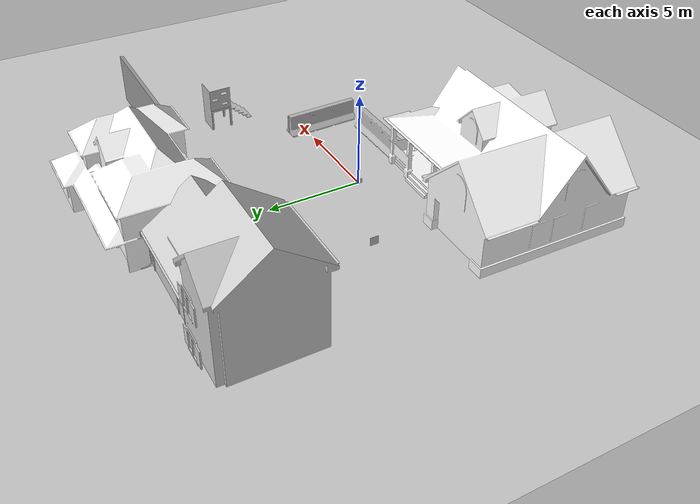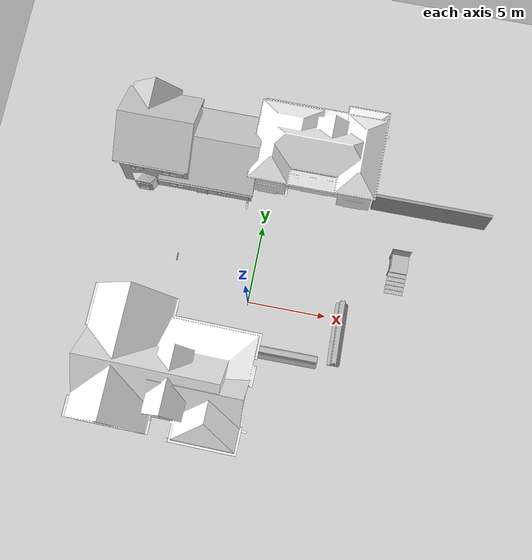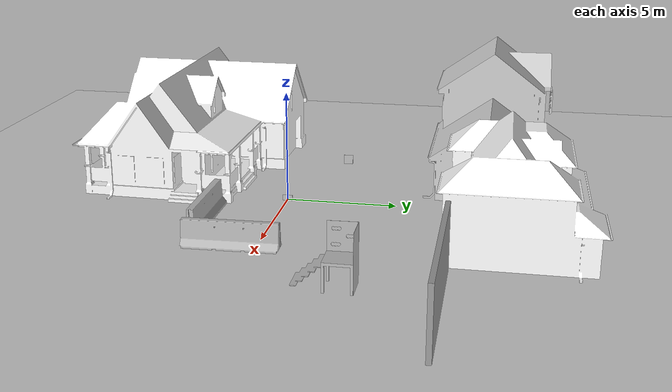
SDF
<sdf version="1.4">
 <world name="default">
  <light name="sun" type="directional">
   <pose>0 0 10 0 -0 0</pose>
   <diffuse>0.8 0.8 0.8 1</diffuse>
   <specular>0.2 0.2 0.2 1</specular>
   <attenuation>
    <range>1000</range>
    <constant>0.9</constant>
    <linear>0.01</linear>
    <quadratic>0.001</quadratic>
   </attenuation>
   <direction>-0.5 0.1 -0.9</direction>
  </light>
  <model name="ground_plane">
   <static>1</static>
   <link name="link">
    <collision name="collision">
     <geometry><plane><normal>0 0 1</normal><size>100 100</size></plane></geometry>
     <surface><friction><ode><mu>100</mu><mu2>50</mu2></ode></friction></surface>
    </collision>
    <visual name="visual">
     <cast_shadows>0</cast_shadows>
     <geometry><plane><normal>0 0 1</normal><size>100 100</size></plane></geometry>
     <material>
      <script><uri>file://media/materials/scripts/gazebo.material</uri><name>Gazebo/Grey</name></script>
     </material>
    </visual>
    <velocity_decay><linear>0</linear><angular>0</angular></velocity_decay>
   </link>
  </model>
  <physics type="ode">
   <max_step_size>0.001</max_step_size>
   <real_time_factor>1</real_time_factor>
   <real_time_update_rate>1000</real_time_update_rate>
   <gravity>0 0 -9.8</gravity>
  </physics>
  <scene><ambient>0.4 0.4 0.4 1</ambient><background>0.7 0.7 0.7 1</background><shadows>1</shadows></scene>
  <model name="House 3">
   <static>1</static>
   <link name="link">
    <collision name="collision">
     <geometry><mesh><uri>model://house_3/meshes/house_3.dae</uri></mesh></geometry>
    </collision>
    <visual name="visual">
     <geometry><mesh><uri>model://house_3/meshes/house_3.dae</uri></mesh></geometry>
     <material>
      <script>
       <uri>model://house_3/materials/scripts</uri>
       <uri>model://house_3/materials/textures</uri>
       <uri>model://house_1/materials/textures</uri>
       <name>House_3/Diffuse</name>
      </script>
      <shader type="normal_map_object_space">
       <normal_map>model://house_1/materials/textures/House_1_Normal.png</normal_map>
      </shader>
     </material>
    </visual>
    <velocity_decay><linear>0</linear><angular>0</angular></velocity_decay>
   </link>
   <pose>-5 9 0 0 -0 0</pose>
  </model>
  <model name="House 2">
   <static>1</static>
   <link name="link">
    <collision name="collision">
     <geometry><mesh><uri>model://house_2/meshes/house_2.dae</uri></mesh></geometry>
    </collision>
    <visual name="visual">
     <geometry><mesh><uri>model://house_2/meshes/house_2.dae</uri></mesh></geometry>
     <material>
      <script>
       <uri>model://house_2/materials/scripts</uri>
       <uri>model://house_2/materials/textures</uri>
       <uri>model://house_1/materials/textures</uri>
       <name>House_2/Diffuse</name>
      </script>
      <shader type="normal_map_object_space">
       <normal_map>model://house_1/materials/textures/House_1_Normal.png</normal_map>
      </shader>
     </material>
    </visual>
    <velocity_decay><linear>0</linear><angular>0</angular></velocity_decay>
   </link>
   <pose>2 10 0 0 -0 0</pose>
  </model>
  <model name="House 1">
   <static>1</static>
   <link name="link">
    <collision name="collision">
     <geometry><mesh><uri>model://house_1/meshes/house_1.dae</uri></mesh></geometry>
    </collision>
    <visual name="visual">
     <geometry><mesh><uri>model://house_1/meshes/house_1.dae</uri></mesh></geometry>
     <material>
      <script>
       <uri>model://house_1/materials/scripts</uri>
       <uri>model://house_1/materials/textures</uri>
       <name>House_1/Diffuse</name>
      </script>
      <shader type="normal_map_object_space"><normal_map>House_1_Normal.png</normal_map></shader>
     </material>
    </visual>
    <velocity_decay><linear>0</linear><angular>0</angular></velocity_decay>
   </link>
   <pose>-4.18156 -5.60557 0 0 -0 3.12318</pose>
  </model>
  <model name="jersey_barrier">
   <static>1</static>
   <link name="link">
    <visual name="visual">
     <geometry><mesh><uri>model://jersey_barrier/meshes/jersey_barrier.dae</uri></mesh></geometry>
    </visual>
    <collision name="upright">
     <pose>0 0 0.5715 0 -0 0</pose>
     <geometry><box><size>4.06542 0.3063 1.143</size></box></geometry>
    </collision>
    <collision name="base">
     <pose>0 0 0.032258 0 -0 0</pose>
     <geometry><box><size>4.06542 0.8107 0.064516</size></box></geometry>
    </collision>
    <collision name="base2">
     <pose>0 0 0.1 0 -0 0</pose>
     <geometry><box><size>4.06542 0.65 0.1</size></box></geometry>
    </collision>
    <collision name="base3">
     <pose>0 0 0.2 0 -0 0</pose>
     <geometry><box><size>4.06542 0.5 0.1</size></box></geometry>
    </collision>
    <collision name="left-angle">
     <pose>0 -0.224 0.2401 0.9 -0 0</pose>
     <geometry><box><size>4.06542 0.5 0.064516</size></box></geometry>
    </collision>
    <collision name="right-angle">
     <pose>0 0.224 0.2401 -0.9 0 0</pose>
     <geometry><box><size>4.06542 0.5 0.064516</size></box></geometry>
    </collision>
    <velocity_decay><linear>0</linear><angular>0</angular></velocity_decay>
   </link>
   <pose>3 -3 0 0 -0 0</pose>
  </model>
  <model name="jersey_barrier_0">
   <static>1</static>
   <link name="link">
    <visual name="visual">
     <geometry><mesh><uri>model://jersey_barrier/meshes/jersey_barrier.dae</uri></mesh></geometry>
    </visual>
    <collision name="upright">
     <pose>0 0 0.5715 0 -0 0</pose>
     <geometry><box><size>4.06542 0.3063 1.143</size></box></geometry>
    </collision>
    <collision name="base">
     <pose>0 0 0.032258 0 -0 0</pose>
     <geometry><box><size>4.06542 0.8107 0.064516</size></box></geometry>
    </collision>
    <collision name="base2">
     <pose>0 0 0.1 0 -0 0</pose>
     <geometry><box><size>4.06542 0.65 0.1</size></box></geometry>
    </collision>
    <collision name="base3">
     <pose>0 0 0.2 0 -0 0</pose>
     <geometry><box><size>4.06542 0.5 0.1</size></box></geometry>
    </collision>
    <collision name="left-angle">
     <pose>0 -0.224 0.2401 0.9 -0 0</pose>
     <geometry><box><size>4.06542 0.5 0.064516</size></box></geometry>
    </collision>
    <collision name="right-angle">
     <pose>0 0.224 0.2401 -0.9 0 0</pose>
     <geometry><box><size>4.06542 0.5 0.064516</size></box></geometry>
    </collision>
    <velocity_decay><linear>0</linear><angular>0</angular></velocity_decay>
   </link>
   <pose>6 -1 0 0 -0 1.6</pose>
  </model>
  <model name="grey_wall">
   <static>1</static>
   <link name="link">
    <pose>0 0 1.4 0 -0 0</pose>
    <collision name="collision"><geometry><box><size>7.5 0.2 2.8</size></box></geometry></collision>
    <visual name="visual">
     <cast_shadows>0</cast_shadows>
     <geometry><box><size>7.5 0.2 2.8</size></box></geometry>
     <material>
      <script>
       <uri>model://grey_wall/materials/scripts</uri>
       <uri>model://grey_wall/materials/textures</uri>
       <name>vrc/grey_wall</name>
      </script>
     </material>
    </visual>
    <velocity_decay><linear>0</linear><angular>0</angular></velocity_decay>
   </link>
   <pose>10.402 7.71769 0 0 -0 0</pose>
  </model>
  <model name="nist_stairs_120">
   <static>1</static>
   <link name="nist_stairs_120_link">
    <collision name="collision">
     <geometry>
      <mesh><uri>model://nist_stairs_120/meshes/nist_stairs_120.dae</uri><scale>1 1 1</scale></mesh>
     </geometry>
    </collision>
    <visual name="visual">
     <geometry>
      <mesh><uri>model://nist_stairs_120/meshes/nist_stairs_120.dae</uri><scale>1 1 1</scale></mesh>
     </geometry>
    </visual>
    <velocity_decay><linear>0</linear><angular>0</angular></velocity_decay>
   </link>
   <pose>9.01164 2.82223 0 0 -0 0</pose>
  </model>
  <model name="marker">
   <static>1</static>
   <link name="marker_link">
    <collision name="collision">
     <geometry>
      <mesh>
       <uri>file:///home/dariusm/cws4/src/ardrone_tf_controller/tum_simulator/marker/meshes/artag_01.dae</uri>
       <scale>0 0 0</scale>
      </mesh>
     </geometry>
    </collision>
    <visual name="visual">
     <geometry>
      <mesh>
       <uri>file:///home/dariusm/cws4/src/ardrone_tf_controller/tum_simulator/marker/meshes/artag_01.dae</uri>
       <scale>10 10 10</scale>
      </mesh>
     </geometry>
    </visual>
    <velocity_decay><linear>0</linear><angular>0</angular></velocity_decay>
   </link>
   <pose>-5 2 0.5 0 0 0</pose>
  </model>
  <model name="marker2">
   <static>1</static>
   <link name="marker_link">
    <collision name="collision">
     <geometry>
      <mesh>
       <uri>file:///home/dariusm/cws4/src/ardrone_tf_controller/tum_simulator/marker/meshes/artag_01.dae</uri>
       <scale>0 0 0</scale>
      </mesh>
     </geometry>
    </collision>
    <visual name="visual">
     <geometry>
      <mesh>
       <uri>file:///home/dariusm/cws4/src/ardrone_tf_controller/tum_simulator/marker/meshes/artag_01.dae</uri>
       <scale>10 10 10</scale>
      </mesh>
     </geometry>
    </visual>
    <velocity_decay><linear>0</linear><angular>0</angular></velocity_decay>
   </link>
  </model>
  <model name="nist_elevated_floor_120">
   <static>1</static>
   <link name="nist_elevated_floor_120">
    <collision name="collision">
     <geometry>
      <mesh><uri>model://nist_elevated_floor_120/meshes/nist_elevated_floor_120.dae</uri><scale>1 1 1</scale></mesh>
     </geometry>
    </collision>
    <visual name="visual">
     <geometry>
      <mesh><uri>model://nist_elevated_floor_120/meshes/nist_elevated_floor_120.dae</uri><scale>1 1 1</scale></mesh>
     </geometry>
    </visual>
    <velocity_decay><linear>0</linear><angular>0</angular></velocity_decay>
   </link>
   <pose>9 4 0 0 -0 0</pose>
  </model>
  <model name="nist_maze_wall_240">
   <static>1</static>
   <link name="nist__maze_wall_240_link">
    <collision name="collision">
     <geometry>
      <mesh><uri>model://nist_maze_wall_240/meshes/nist_maze_wall_240.dae</uri><scale>1 1 1</scale></mesh>
     </geometry>
    </collision>
    <visual name="visual">
     <geometry>
      <mesh><uri>model://nist_maze_wall_240/meshes/nist_maze_wall_240.dae</uri><scale>1 1 1</scale></mesh>
     </geometry>
    </visual>
    <velocity_decay><linear>0</linear><angular>0</angular></velocity_decay>
   </link>
   <pose>9 4 0 0 -0 0</pose>
  </model>
  <model name="nist">
   <static>1</static>
   <link name="nist_maze_wall_triple_holes_120_link">
    <collision name="collision">
     <geometry>
      <mesh>
       <uri>model://nist_maze_wall_triple_holes_120/meshes/nist_maze_wall_triple_holes_120.dae</uri>
       <scale>1 1 1</scale>
      </mesh>
     </geometry>
    </collision>
    <visual name="visual">
     <geometry>
      <mesh>
       <uri>model://nist_maze_wall_triple_holes_120/meshes/nist_maze_wall_triple_holes_120.dae</uri>
       <scale>1 1 1</scale>
      </mesh>
     </geometry>
    </visual>
    <velocity_decay><linear>0</linear><angular>0</angular></velocity_decay>
   </link>
   <pose>9.02578 4.02961 1.2 0 -0 1.6</pose>
  </model>
 </world>
</sdf>
